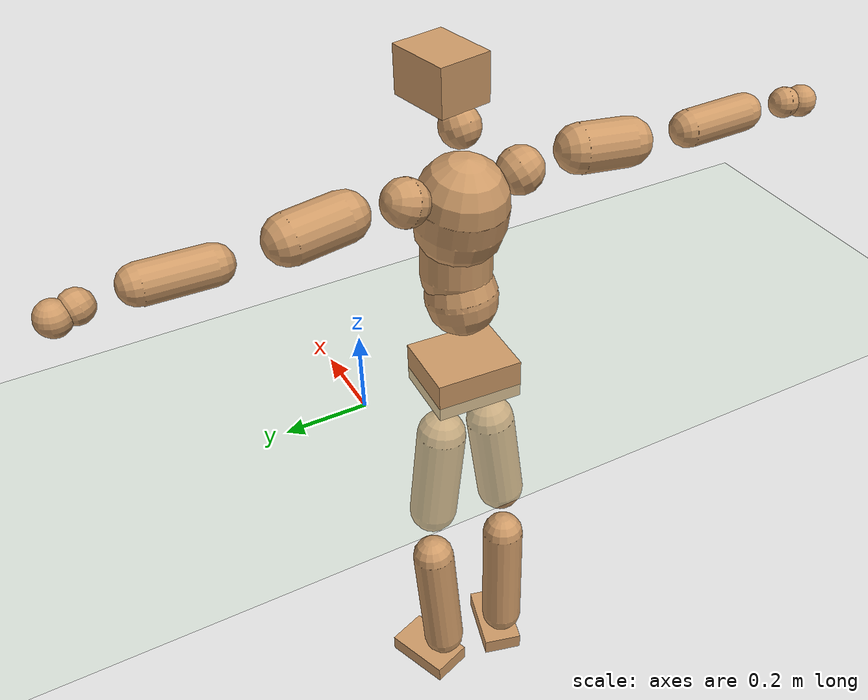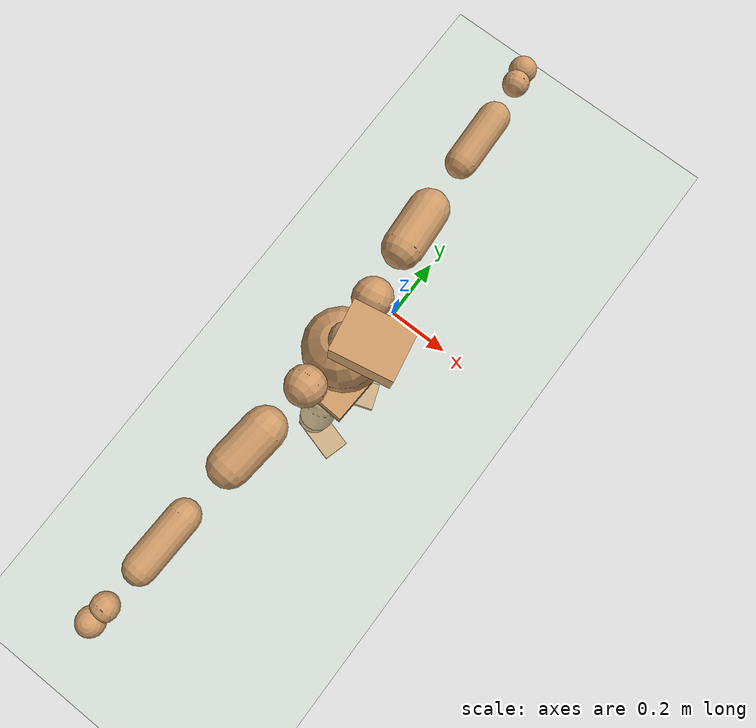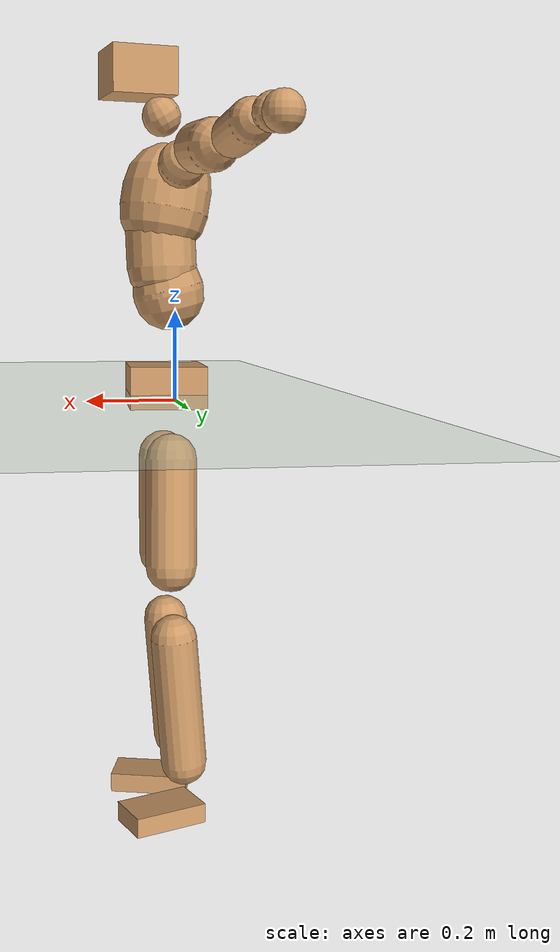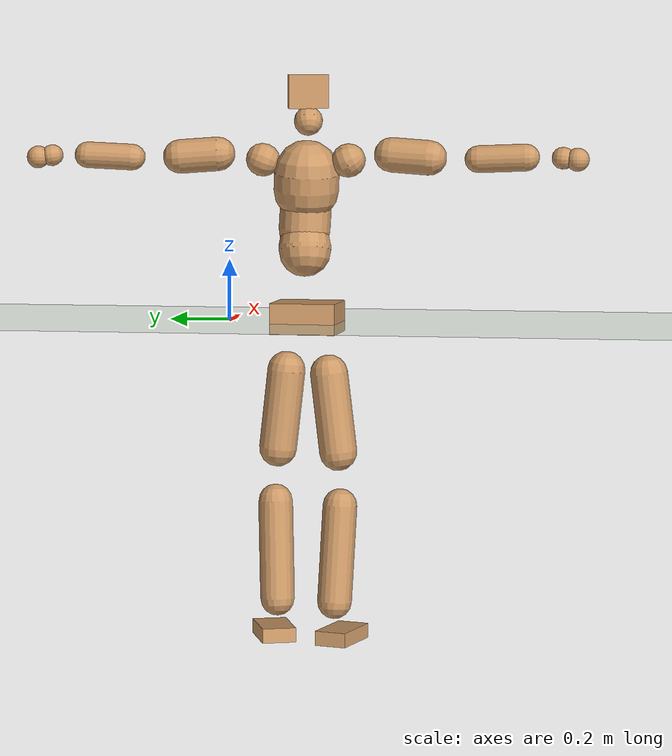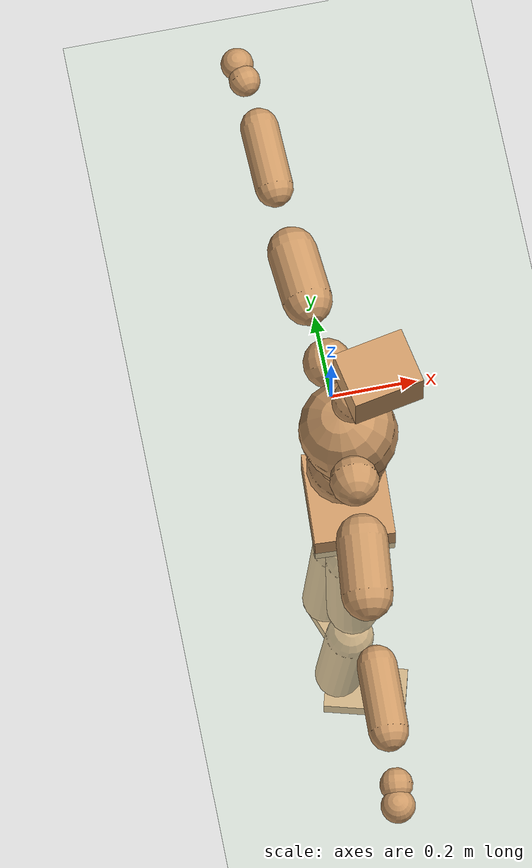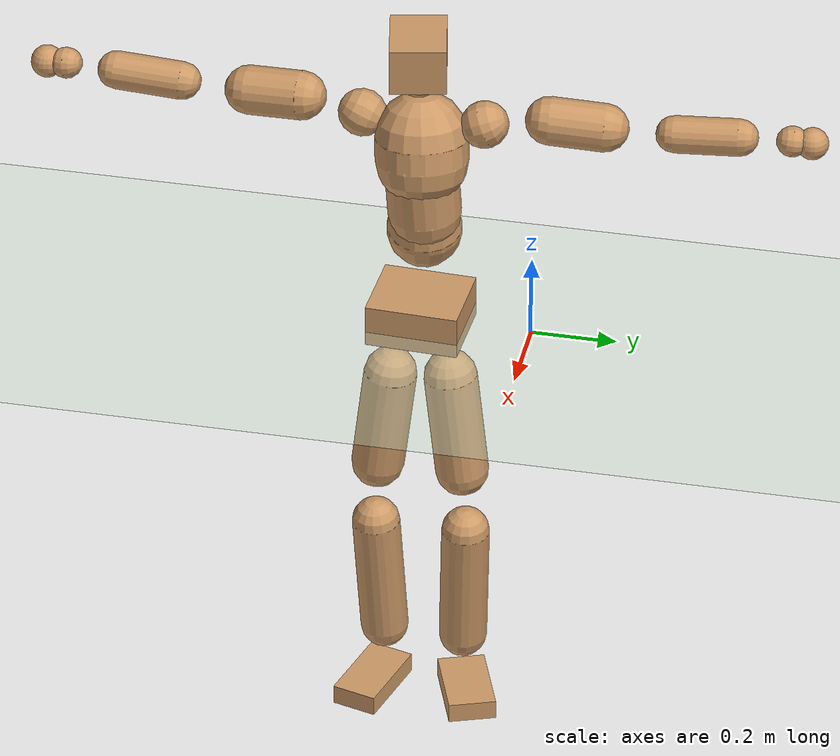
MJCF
<mujoco model="humanoid">
  <compiler coordinate="local" angle="radian"/>
  <default>
    <joint damping="0.0" armature="0.01" stiffness="0.0" limited="true"/>
    <geom conaffinity="1" condim="3" contype="7" margin="0.001" rgba="0.8 0.6 .4 1"/>
  </default>
  <asset>
    <texture type="skybox" builtin="gradient" rgb1=".4 .5 .6" rgb2="0 0 0" width="100" height="100"/>
    <texture builtin="flat" height="1278" mark="cross" markrgb="1 1 1" name="texgeom" random="0.01" rgb1="0.8 0.6 0.4" rgb2="0.8 0.6 0.4" type="cube" width="127"/>
    <texture builtin="checker" height="100" name="texplane" rgb1="0 0 0" rgb2="0.8 0.8 0.8" type="2d" width="100"/>
    <material name="MatPlane" reflectance="0.5" shininess="1" specular="1" texrepeat="60 60" texture="texplane"/>
    <material name="geom" texture="texgeom" texuniform="true"/>
  </asset>
  <worldbody>
    <light cutoff="100" diffuse="1 1 1" dir="-0 0 -1.3" directional="true" exponent="1" pos="0 0 1.3" specular=".1 .1 .1"/>
    <geom conaffinity="1" condim="3" name="floor" pos="0 0 0" rgba="0.8 0.9 0.8 1" size="100 100 .2" type="plane" material="MatPlane"/>
    <body name="Pelvis" pos="-0.0015 -0.2634 0.0224">
      <freejoint name="Pelvis"/>
      <geom type="box" contype="1" conaffinity="1" density="5359.374505" pos="-0.0118 0.0006 -0.0087" size="0.0927 0.1089 0.051" quat="0.9997 0.0000 0.0000 -0.0248" name="Pelvis"/>
      <body name="L_Hip" pos="-0.0194 0.0597 -0.0922">
        <joint name="L_Hip_x" type="hinge" pos="0 0 0" axis="1 0 0" stiffness="1600" damping="160" armature="0.02" range="-180.0000 180.0000"/>
        <joint name="L_Hip_y" type="hinge" pos="0 0 0" axis="0 1 0" stiffness="1600" damping="160" armature="0.02" range="-180.0000 180.0000"/>
        <joint name="L_Hip_z" type="hinge" pos="0 0 0" axis="0 0 1" stiffness="1600" damping="160" armature="0.02" range="-180.0000 180.0000"/>
        <geom type="capsule" contype="1" conaffinity="1" density="2040.816327" size="0.0628" fromto="0.0018 0.0103 -0.0923 0.0068 0.0395 -0.3530" name="L_Hip"/>
        <body name="L_Knee" pos="0.0085 0.0499 -0.4452">
          <joint name="L_Knee_x" type="hinge" pos="0 0 0" axis="1 0 0" stiffness="1600" damping="160" armature="0.02" range="-180.0000 180.0000"/>
          <joint name="L_Knee_y" type="hinge" pos="0 0 0" axis="0 1 0" stiffness="1600" damping="160" armature="0.02" range="-180.0000 180.0000"/>
          <joint name="L_Knee_z" type="hinge" pos="0 0 0" axis="0 0 1" stiffness="1600" damping="160" armature="0.02" range="-180.0000 180.0000"/>
          <geom type="capsule" contype="1" conaffinity="1" density="1234.567901" size="0.057" fromto="-0.0072 -0.0028 -0.0867 -0.0343 -0.0134 -0.4103" name="L_Knee"/>
          <body name="L_Ankle" pos="-0.0415 -0.0163 -0.497">
            <joint name="L_Ankle_x" type="hinge" pos="0 0 0" axis="1 0 0" stiffness="1600" damping="160" armature="0.02" range="-180.0000 180.0000"/>
            <joint name="L_Ankle_y" type="hinge" pos="0 0 0" axis="0 1 0" stiffness="1600" damping="160" armature="0.02" range="-180.0000 180.0000"/>
            <joint name="L_Ankle_z" type="hinge" pos="0 0 0" axis="0 0 1" stiffness="1600" damping="160" armature="0.02" range="-180.0000 180.0000"/>
            <geom type="box" contype="1" conaffinity="1" density="1000.000003" pos="0.0663 0.0239 -0.0343" size="0.0937 0.0565 0.0241" quat="0.9851 0.0000 0.0000 0.1722" name="L_Ankle"/>
            <body name="L_Toe" pos="0.1327 0.0479 -0.0686">
              <joint name="L_Toe_x" type="hinge" pos="0 0 0" axis="1 0 0" stiffness="1000" damping="100" armature="0.02" range="-180.0000 180.0000"/>
              <joint name="L_Toe_y" type="hinge" pos="0 0 0" axis="0 1 0" stiffness="1000" damping="100" armature="0.02" range="-180.0000 180.0000"/>
              <joint name="L_Toe_z" type="hinge" pos="0 0 0" axis="0 0 1" stiffness="1000" damping="100" armature="0.02" range="-180.0000 180.0000"/>
              <geom type="box" contype="1" conaffinity="1" density="8058841.175962" pos="0.0000 0.0000 0.0354" size="0.0011 0.0026 0.0013" quat="0.9843 0.0000 0.0000 0.1764" name="L_Toe"/>
            </body>
          </body>
        </body>
      </body>
      <body name="R_Hip" pos="-0.0151 -0.0615 -0.1022">
        <joint name="R_Hip_x" type="hinge" pos="0 0 0" axis="1 0 0" stiffness="1600" damping="160" armature="0.02" range="-180.0000 180.0000"/>
        <joint name="R_Hip_y" type="hinge" pos="0 0 0" axis="0 1 0" stiffness="1600" damping="160" armature="0.02" range="-180.0000 180.0000"/>
        <joint name="R_Hip_z" type="hinge" pos="0 0 0" axis="0 0 1" stiffness="1600" damping="160" armature="0.02" range="-180.0000 180.0000"/>
        <geom type="capsule" contype="1" conaffinity="1" density="2040.816327" size="0.0623" fromto="-0.0012 -0.0110 -0.0916 -0.0047 -0.0426 -0.3530" name="R_Hip"/>
        <body name="R_Knee" pos="-0.006 -0.0536 -0.4446">
          <joint name="R_Knee_x" type="hinge" pos="0 0 0" axis="1 0 0" stiffness="1600" damping="160" armature="0.02" range="-180.0000 180.0000"/>
          <joint name="R_Knee_y" type="hinge" pos="0 0 0" axis="0 1 0" stiffness="1600" damping="160" armature="0.02" range="-180.0000 180.0000"/>
          <joint name="R_Knee_z" type="hinge" pos="0 0 0" axis="0 0 1" stiffness="1600" damping="160" armature="0.02" range="-180.0000 180.0000"/>
          <geom type="capsule" contype="1" conaffinity="1" density="1234.567901" size="0.0569" fromto="-0.0066 0.0039 -0.0865 -0.0310 0.0184 -0.4058" name="R_Knee"/>
          <body name="R_Ankle" pos="-0.0376 0.0223 -0.4923">
            <joint name="R_Ankle_x" type="hinge" pos="0 0 0" axis="1 0 0" stiffness="1600" damping="160" armature="0.02" range="-180.0000 180.0000"/>
            <joint name="R_Ankle_y" type="hinge" pos="0 0 0" axis="0 1 0" stiffness="1600" damping="160" armature="0.02" range="-180.0000 180.0000"/>
            <joint name="R_Ankle_z" type="hinge" pos="0 0 0" axis="0 0 1" stiffness="1600" damping="160" armature="0.02" range="-180.0000 180.0000"/>
            <geom type="box" contype="1" conaffinity="1" density="999.999948" pos="0.0713 -0.0196 -0.0360" size="0.0989 0.0541 0.0242" quat="0.9910 0.0000 0.0000 -0.1341" name="R_Ankle"/>
            <body name="R_Toe" pos="0.1425 -0.0393 -0.0721">
              <joint name="R_Toe_x" type="hinge" pos="0 0 0" axis="1 0 0" stiffness="1000" damping="100" armature="0.02" range="-180.0000 180.0000"/>
              <joint name="R_Toe_y" type="hinge" pos="0 0 0" axis="0 1 0" stiffness="1000" damping="100" armature="0.02" range="-180.0000 180.0000"/>
              <joint name="R_Toe_z" type="hinge" pos="0 0 0" axis="0 0 1" stiffness="1000" damping="100" armature="0.02" range="-180.0000 180.0000"/>
              <geom type="box" contype="1" conaffinity="1" density="8225978.276045" pos="0.0000 0.0000 0.0375" size="0.0011 0.0026 0.0013" quat="0.9920 0.0000 0.0000 -0.1259" name="R_Toe"/>
            </body>
          </body>
        </body>
      </body>
      <body name="Torso" pos="-0.0361 0.0053 0.1421">
        <joint name="Torso_x" type="hinge" pos="0 0 0" axis="1 0 0" stiffness="2000" damping="200" armature="0.02" range="-180.0000 180.0000"/>
        <joint name="Torso_y" type="hinge" pos="0 0 0" axis="0 1 0" stiffness="2000" damping="200" armature="0.02" range="-180.0000 180.0000"/>
        <joint name="Torso_z" type="hinge" pos="0 0 0" axis="0 0 1" stiffness="2000" damping="200" armature="0.02" range="-180.0000 180.0000"/>
        <geom type="capsule" contype="1" conaffinity="1" density="2040.816327" size="0.0873" fromto="0.0188 0.0030 0.0852 0.0158 0.0025 0.0717" name="Torso"/>
        <body name="Spine" pos="0.0347 0.0055 0.1568">
          <joint name="Spine_x" type="hinge" pos="0 0 0" axis="1 0 0" stiffness="2000" damping="200" armature="0.02" range="-180.0000 180.0000"/>
          <joint name="Spine_y" type="hinge" pos="0 0 0" axis="0 1 0" stiffness="2000" damping="200" armature="0.02" range="-180.0000 180.0000"/>
          <joint name="Spine_z" type="hinge" pos="0 0 0" axis="0 0 1" stiffness="2000" damping="200" armature="0.02" range="-180.0000 180.0000"/>
          <geom type="capsule" contype="1" conaffinity="1" density="2040.816327" size="0.0851" fromto="0.0032 -0.0047 0.0849 -0.0008 0.0012 -0.0222" name="Spine"/>
          <body name="Chest" pos="0.0024 -0.0035 0.0628">
            <joint name="Chest_x" type="hinge" pos="0 0 0" axis="1 0 0" stiffness="2000" damping="200" armature="0.02" range="-180.0000 180.0000"/>
            <joint name="Chest_y" type="hinge" pos="0 0 0" axis="0 1 0" stiffness="2000" damping="200" armature="0.02" range="-180.0000 180.0000"/>
            <joint name="Chest_z" type="hinge" pos="0 0 0" axis="0 0 1" stiffness="2000" damping="200" armature="0.02" range="-180.0000 180.0000"/>
            <geom type="capsule" contype="1" conaffinity="1" density="2040.816327" size="0.1081" fromto="-0.0179 -0.0055 0.1065 -0.0088 -0.0027 0.0522" name="Chest"/>
            <body name="Neck" pos="-0.0329 -0.0134 0.229">
              <joint name="Neck_x" type="hinge" pos="0 0 0" axis="1 0 0" stiffness="1000" damping="100" armature="0.02" range="-180.0000 180.0000"/>
              <joint name="Neck_y" type="hinge" pos="0 0 0" axis="0 1 0" stiffness="1000" damping="100" armature="0.02" range="-180.0000 180.0000"/>
              <joint name="Neck_z" type="hinge" pos="0 0 0" axis="0 0 1" stiffness="1000" damping="100" armature="0.02" range="-180.0000 180.0000"/>
              <geom type="capsule" contype="1" conaffinity="1" density="1000" size="0.0472" fromto="0.0279 0.0045 0.0466 0.0289 0.0047 0.0483" name="Neck"/>
              <body name="Head" pos="0.0568 0.0092 0.0949">
                <joint name="Head_x" type="hinge" pos="0 0 0" axis="1 0 0" stiffness="1000" damping="100" armature="0.02" range="-180.0000 180.0000"/>
                <joint name="Head_y" type="hinge" pos="0 0 0" axis="0 1 0" stiffness="1000" damping="100" armature="0.02" range="-180.0000 180.0000"/>
                <joint name="Head_z" type="hinge" pos="0 0 0" axis="0 0 1" stiffness="1000" damping="100" armature="0.02" range="-180.0000 180.0000"/>
                <geom type="box" contype="1" conaffinity="1" density="2249.999943" pos="0.0294 0.0056 0.0485" size="0.0799 0.0646 0.0553" quat="0.9956 0.0000 0.0000 0.0942" name="Head"/>
              </body>
            </body>
            <body name="L_Thorax" pos="-0.0225 0.0765 0.1244">
              <joint name="L_Thorax_x" type="hinge" pos="0 0 0" axis="1 0 0" stiffness="1000" damping="100" armature="0.02" range="-180.0000 180.0000"/>
              <joint name="L_Thorax_y" type="hinge" pos="0 0 0" axis="0 1 0" stiffness="1000" damping="100" armature="0.02" range="-180.0000 180.0000"/>
              <joint name="L_Thorax_z" type="hinge" pos="0 0 0" axis="0 0 1" stiffness="1000" damping="100" armature="0.02" range="-180.0000 180.0000"/>
              <geom type="capsule" contype="1" conaffinity="1" density="1000" size="0.0551" fromto="-0.0093 0.0605 0.0248 -0.0096 0.0623 0.0255" name="L_Thorax"/>
              <body name="L_Shoulder" pos="-0.0189 0.1228 0.0503">
                <joint name="L_Shoulder_x" type="hinge" pos="0 0 0" axis="1 0 0" stiffness="1000" damping="100" armature="0.02" range="-720.0000 720.0000"/>
                <joint name="L_Shoulder_y" type="hinge" pos="0 0 0" axis="0 1 0" stiffness="1000" damping="100" armature="0.02" range="-720.0000 720.0000"/>
                <joint name="L_Shoulder_z" type="hinge" pos="0 0 0" axis="0 0 1" stiffness="1000" damping="100" armature="0.02" range="-720.0000 720.0000"/>
                <geom type="capsule" contype="1" conaffinity="1" density="1000" size="0.0563" fromto="-0.0068 0.0858 -0.0061 -0.0167 0.2111 -0.0150" name="L_Shoulder"/>
                <body name="L_Elbow" pos="-0.0234 0.2969 -0.0211">
                  <joint name="L_Elbow_x" type="hinge" pos="0 0 0" axis="1 0 0" stiffness="1000" damping="100" armature="0.02" range="-720.0000 720.0000"/>
                  <joint name="L_Elbow_y" type="hinge" pos="0 0 0" axis="0 1 0" stiffness="1000" damping="100" armature="0.02" range="-720.0000 720.0000"/>
                  <joint name="L_Elbow_z" type="hinge" pos="0 0 0" axis="0 0 1" stiffness="1000" damping="100" armature="0.02" range="-720.0000 720.0000"/>
                  <geom type="capsule" contype="1" conaffinity="1" density="1000" size="0.0432" fromto="-0.0026 0.0731 0.0035 -0.0078 0.2222 0.0106" name="L_Elbow"/>
                  <body name="L_Wrist" pos="-0.0104 0.2953 0.014">
                    <joint name="L_Wrist_x" type="hinge" pos="0 0 0" axis="1 0 0" stiffness="600" damping="60" armature="0.02" range="-180.0000 180.0000"/>
                    <joint name="L_Wrist_y" type="hinge" pos="0 0 0" axis="0 1 0" stiffness="600" damping="60" armature="0.02" range="-180.0000 180.0000"/>
                    <joint name="L_Wrist_z" type="hinge" pos="0 0 0" axis="0 0 1" stiffness="600" damping="60" armature="0.02" range="-180.0000 180.0000"/>
                    <geom type="capsule" contype="1" conaffinity="1" density="1000" size="0.0355" fromto="-0.0081 0.0442 -0.0052 -0.0085 0.0462 -0.0055" name="L_Wrist"/>
                    <body name="L_Hand" pos="-0.0166 0.0904 -0.0107">
                      <joint name="L_Hand_x" type="hinge" pos="0 0 0" axis="1 0 0" stiffness="600" damping="60" armature="0.02" range="-180.0000 180.0000"/>
                      <joint name="L_Hand_y" type="hinge" pos="0 0 0" axis="0 1 0" stiffness="600" damping="60" armature="0.02" range="-180.0000 180.0000"/>
                      <joint name="L_Hand_z" type="hinge" pos="0 0 0" axis="0 0 1" stiffness="600" damping="60" armature="0.02" range="-180.0000 180.0000"/>
                      <geom type="sphere" contype="1" conaffinity="1" density="1000" size="0.0371" pos="0.0000 0.0000 0.0000" name="L_Hand"/>
                    </body>
                  </body>
                </body>
              </body>
            </body>
            <body name="R_Thorax" pos="-0.0247 -0.0877 0.1227">
              <joint name="R_Thorax_x" type="hinge" pos="0 0 0" axis="1 0 0" stiffness="1000" damping="100" armature="0.02" range="-180.0000 180.0000"/>
              <joint name="R_Thorax_y" type="hinge" pos="0 0 0" axis="0 1 0" stiffness="1000" damping="100" armature="0.02" range="-180.0000 180.0000"/>
              <joint name="R_Thorax_z" type="hinge" pos="0 0 0" axis="0 0 1" stiffness="1000" damping="100" armature="0.02" range="-180.0000 180.0000"/>
              <geom type="capsule" contype="1" conaffinity="1" density="1000" size="0.0554" fromto="-0.0034 -0.0566 0.0254 -0.0035 -0.0584 0.0262" name="R_Thorax"/>
              <body name="R_Shoulder" pos="-0.0068 -0.115 0.0516">
                <joint name="R_Shoulder_x" type="hinge" pos="0 0 0" axis="1 0 0" stiffness="1000" damping="100" armature="0.02" range="-720.0000 720.0000"/>
                <joint name="R_Shoulder_y" type="hinge" pos="0 0 0" axis="0 1 0" stiffness="1000" damping="100" armature="0.02" range="-720.0000 720.0000"/>
                <joint name="R_Shoulder_z" type="hinge" pos="0 0 0" axis="0 0 1" stiffness="1000" damping="100" armature="0.02" range="-720.0000 720.0000"/>
                <geom type="capsule" contype="1" conaffinity="1" density="1000" size="0.0576" fromto="-0.0089 -0.0870 -0.0061 -0.0216 -0.2113 -0.0149" name="R_Shoulder"/>
                <body name="R_Elbow" pos="-0.0305 -0.2983 -0.021">
                  <joint name="R_Elbow_x" type="hinge" pos="0 0 0" axis="1 0 0" stiffness="1000" damping="100" armature="0.02" range="-720.0000 720.0000"/>
                  <joint name="R_Elbow_y" type="hinge" pos="0 0 0" axis="0 1 0" stiffness="1000" damping="100" armature="0.02" range="-720.0000 720.0000"/>
                  <joint name="R_Elbow_z" type="hinge" pos="0 0 0" axis="0 0 1" stiffness="1000" damping="100" armature="0.02" range="-720.0000 720.0000"/>
                  <geom type="capsule" contype="1" conaffinity="1" density="1000" size="0.0442" fromto="-0.0024 -0.0741 0.0030 -0.0075 -0.2296 0.0094" name="R_Elbow"/>
                  <body name="R_Wrist" pos="-0.01 -0.3037 0.0125">
                    <joint name="R_Wrist_x" type="hinge" pos="0 0 0" axis="1 0 0" stiffness="600" damping="60" armature="0.02" range="-180.0000 180.0000"/>
                    <joint name="R_Wrist_y" type="hinge" pos="0 0 0" axis="0 1 0" stiffness="600" damping="60" armature="0.02" range="-180.0000 180.0000"/>
                    <joint name="R_Wrist_z" type="hinge" pos="0 0 0" axis="0 0 1" stiffness="600" damping="60" armature="0.02" range="-180.0000 180.0000"/>
                    <geom type="capsule" contype="1" conaffinity="1" density="1000" size="0.0363" fromto="-0.0053 -0.0457 -0.0043 -0.0055 -0.0477 -0.0045" name="R_Wrist"/>
                    <body name="R_Hand" pos="-0.0107 -0.0933 -0.0088">
                      <joint name="R_Hand_x" type="hinge" pos="0 0 0" axis="1 0 0" stiffness="600" damping="60" armature="0.02" range="-180.0000 180.0000"/>
                      <joint name="R_Hand_y" type="hinge" pos="0 0 0" axis="0 1 0" stiffness="600" damping="60" armature="0.02" range="-180.0000 180.0000"/>
                      <joint name="R_Hand_z" type="hinge" pos="0 0 0" axis="0 0 1" stiffness="600" damping="60" armature="0.02" range="-180.0000 180.0000"/>
                      <geom type="sphere" contype="1" conaffinity="1" density="1000" size="0.0379" pos="0.0000 0.0000 0.0000" name="R_Hand"/>
                    </body>
                  </body>
                </body>
              </body>
            </body>
          </body>
        </body>
      </body>
    </body>
  </worldbody>
  <actuator>
    <motor name="L_Hip_x" joint="L_Hip_x" gear="500"/>
    <motor name="L_Hip_y" joint="L_Hip_y" gear="500"/>
    <motor name="L_Hip_z" joint="L_Hip_z" gear="500"/>
    <motor name="L_Knee_x" joint="L_Knee_x" gear="500"/>
    <motor name="L_Knee_y" joint="L_Knee_y" gear="500"/>
    <motor name="L_Knee_z" joint="L_Knee_z" gear="500"/>
    <motor name="L_Ankle_x" joint="L_Ankle_x" gear="500"/>
    <motor name="L_Ankle_y" joint="L_Ankle_y" gear="500"/>
    <motor name="L_Ankle_z" joint="L_Ankle_z" gear="500"/>
    <motor name="L_Toe_x" joint="L_Toe_x" gear="500"/>
    <motor name="L_Toe_y" joint="L_Toe_y" gear="500"/>
    <motor name="L_Toe_z" joint="L_Toe_z" gear="500"/>
    <motor name="R_Hip_x" joint="R_Hip_x" gear="500"/>
    <motor name="R_Hip_y" joint="R_Hip_y" gear="500"/>
    <motor name="R_Hip_z" joint="R_Hip_z" gear="500"/>
    <motor name="R_Knee_x" joint="R_Knee_x" gear="500"/>
    <motor name="R_Knee_y" joint="R_Knee_y" gear="500"/>
    <motor name="R_Knee_z" joint="R_Knee_z" gear="500"/>
    <motor name="R_Ankle_x" joint="R_Ankle_x" gear="500"/>
    <motor name="R_Ankle_y" joint="R_Ankle_y" gear="500"/>
    <motor name="R_Ankle_z" joint="R_Ankle_z" gear="500"/>
    <motor name="R_Toe_x" joint="R_Toe_x" gear="500"/>
    <motor name="R_Toe_y" joint="R_Toe_y" gear="500"/>
    <motor name="R_Toe_z" joint="R_Toe_z" gear="500"/>
    <motor name="Torso_x" joint="Torso_x" gear="500"/>
    <motor name="Torso_y" joint="Torso_y" gear="500"/>
    <motor name="Torso_z" joint="Torso_z" gear="500"/>
    <motor name="Spine_x" joint="Spine_x" gear="500"/>
    <motor name="Spine_y" joint="Spine_y" gear="500"/>
    <motor name="Spine_z" joint="Spine_z" gear="500"/>
    <motor name="Chest_x" joint="Chest_x" gear="500"/>
    <motor name="Chest_y" joint="Chest_y" gear="500"/>
    <motor name="Chest_z" joint="Chest_z" gear="500"/>
    <motor name="Neck_x" joint="Neck_x" gear="500"/>
    <motor name="Neck_y" joint="Neck_y" gear="500"/>
    <motor name="Neck_z" joint="Neck_z" gear="500"/>
    <motor name="Head_x" joint="Head_x" gear="500"/>
    <motor name="Head_y" joint="Head_y" gear="500"/>
    <motor name="Head_z" joint="Head_z" gear="500"/>
    <motor name="L_Thorax_x" joint="L_Thorax_x" gear="500"/>
    <motor name="L_Thorax_y" joint="L_Thorax_y" gear="500"/>
    <motor name="L_Thorax_z" joint="L_Thorax_z" gear="500"/>
    <motor name="L_Shoulder_x" joint="L_Shoulder_x" gear="500"/>
    <motor name="L_Shoulder_y" joint="L_Shoulder_y" gear="500"/>
    <motor name="L_Shoulder_z" joint="L_Shoulder_z" gear="500"/>
    <motor name="L_Elbow_x" joint="L_Elbow_x" gear="500"/>
    <motor name="L_Elbow_y" joint="L_Elbow_y" gear="500"/>
    <motor name="L_Elbow_z" joint="L_Elbow_z" gear="500"/>
    <motor name="L_Wrist_x" joint="L_Wrist_x" gear="500"/>
    <motor name="L_Wrist_y" joint="L_Wrist_y" gear="500"/>
    <motor name="L_Wrist_z" joint="L_Wrist_z" gear="500"/>
    <motor name="L_Hand_x" joint="L_Hand_x" gear="500"/>
    <motor name="L_Hand_y" joint="L_Hand_y" gear="500"/>
    <motor name="L_Hand_z" joint="L_Hand_z" gear="500"/>
    <motor name="R_Thorax_x" joint="R_Thorax_x" gear="500"/>
    <motor name="R_Thorax_y" joint="R_Thorax_y" gear="500"/>
    <motor name="R_Thorax_z" joint="R_Thorax_z" gear="500"/>
    <motor name="R_Shoulder_x" joint="R_Shoulder_x" gear="500"/>
    <motor name="R_Shoulder_y" joint="R_Shoulder_y" gear="500"/>
    <motor name="R_Shoulder_z" joint="R_Shoulder_z" gear="500"/>
    <motor name="R_Elbow_x" joint="R_Elbow_x" gear="500"/>
    <motor name="R_Elbow_y" joint="R_Elbow_y" gear="500"/>
    <motor name="R_Elbow_z" joint="R_Elbow_z" gear="500"/>
    <motor name="R_Wrist_x" joint="R_Wrist_x" gear="500"/>
    <motor name="R_Wrist_y" joint="R_Wrist_y" gear="500"/>
    <motor name="R_Wrist_z" joint="R_Wrist_z" gear="500"/>
    <motor name="R_Hand_x" joint="R_Hand_x" gear="500"/>
    <motor name="R_Hand_y" joint="R_Hand_y" gear="500"/>
    <motor name="R_Hand_z" joint="R_Hand_z" gear="500"/>
  </actuator>
  <contact>
    <exclude body1="Torso" body2="Chest"/>
    <exclude body1="Head" body2="Chest"/>
    <exclude body1="R_Knee" body2="R_Toe"/>
    <exclude body1="R_Knee" body2="L_Ankle"/>
    <exclude body1="R_Knee" body2="L_Toe"/>
    <exclude body1="L_Knee" body2="L_Toe"/>
    <exclude body1="L_Knee" body2="R_Ankle"/>
    <exclude body1="L_Knee" body2="R_Toe"/>
    <exclude body1="L_Shoulder" body2="Chest"/>
    <exclude body1="R_Shoulder" body2="Chest"/>
  </contact>
  <sensor/>
  <size njmax="700" nconmax="700"/>
</mujoco>
